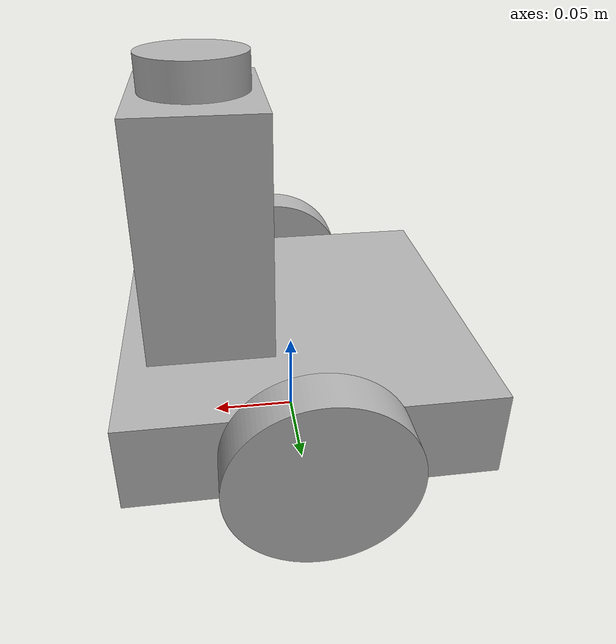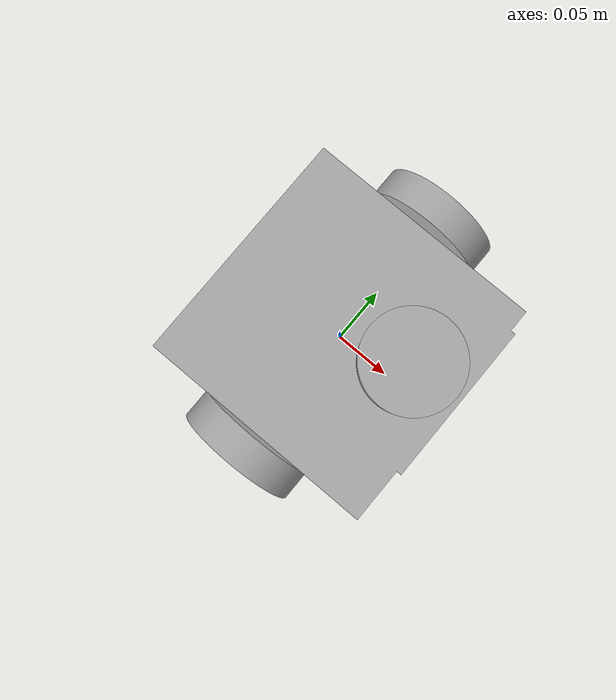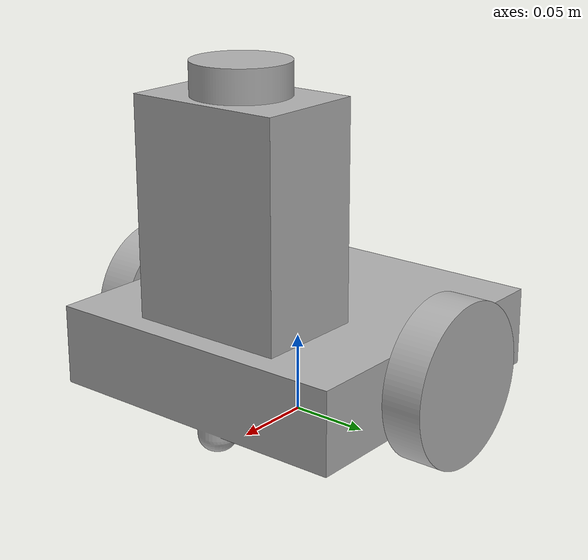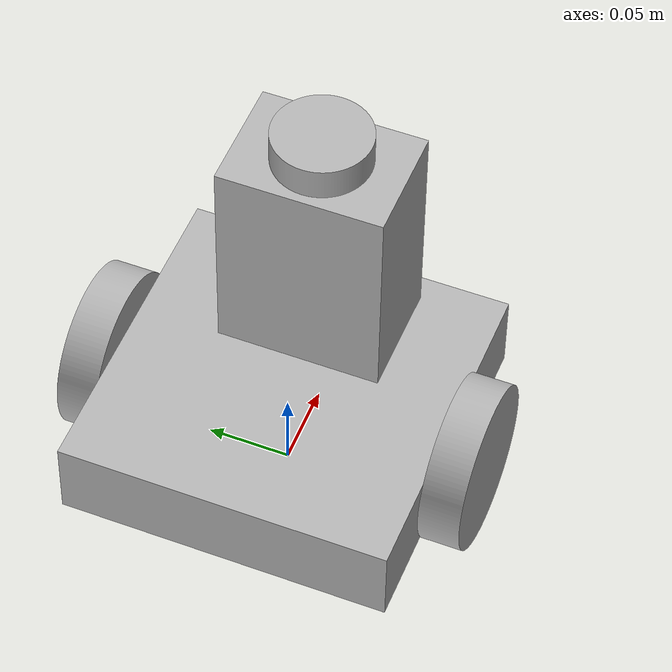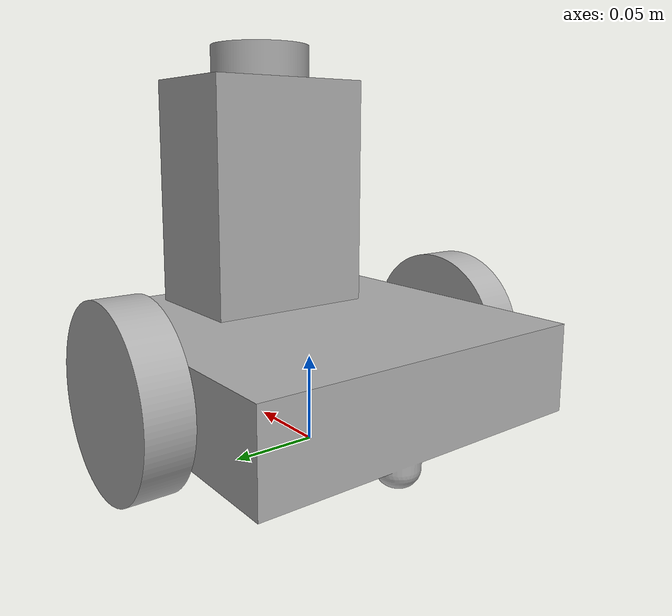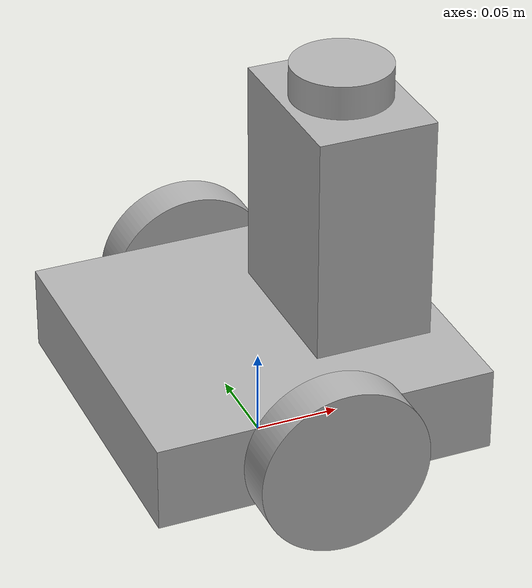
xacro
<?xml version="1.0" ?>
<robot name="rosbot" xmlns:xacro="http://www.ros.org/wiki/xacro">

<xacro:include filename="$(find rosbot_description)/urdf/materials.xacro" />
<xacro:include filename="$(find rosbot_description)/urdf/rosbot.ros2control" />
<xacro:include filename="$(find rosbot_description)/urdf/rosbot.gazebo" />

<link name="base_footprint"/>

<link name="base_link">
  <inertial>
    <origin xyz="0.004279734419382094 0.0 0.05375741183973183" rpy="0 0 0"/>
    <mass value="2.34056579648116"/>
    <inertia ixx="0.008048" iyy="0.008642" izz="0.014848" ixy="-0.0" iyz="0.0" ixz="-0.000438"/>
  </inertial>
  <visual>
    <origin xyz="0 0 0" rpy="0 0 0"/>
    <geometry>
      <mesh filename="file://$(find rosbot_description)/meshes/base_link.stl" scale="0.001 0.001 0.001"/>
    </geometry>
    <material name="silver"/>
  </visual>
  <collision>
    <origin xyz="0 0 0" rpy="0 0 0"/>
    <geometry>
      <mesh filename="file://$(find rosbot_description)/meshes/base_link.stl" scale="0.001 0.001 0.001"/>
    </geometry>
  </collision>
</link>

<link name="right_wheel_1">
  <inertial>
    <origin xyz="-5.790023100122029e-18 -0.012499999999999997 3.7252903539730653e-10" rpy="0 0 0"/>
    <mass value="0.1826050729899067"/>
    <inertia ixx="0.000124" iyy="0.000228" izz="0.000124" ixy="-0.0" iyz="-0.0" ixz="0.0"/>
  </inertial>
  <visual>
    <origin xyz="-0.0 0.1 -0.05" rpy="0 0 0"/>
    <geometry>
      <mesh filename="file://$(find rosbot_description)/meshes/right_wheel_1.stl" scale="0.001 0.001 0.001"/>
    </geometry>
    <material name="silver"/>
  </visual>
  <collision>
    <origin xyz="-0.0 0.1 -0.05" rpy="0 0 0"/>
    <geometry>
      <mesh filename="file://$(find rosbot_description)/meshes/right_wheel_1.stl" scale="0.001 0.001 0.001"/>
    </geometry>
  </collision>
</link>

<link name="left_wheel_1">
  <inertial>
    <origin xyz="1.737006930036608e-17 0.012499999999999997 3.725290284584126e-10" rpy="0 0 0"/>
    <mass value="0.18260507298990675"/>
    <inertia ixx="0.000124" iyy="0.000228" izz="0.000124" ixy="-0.0" iyz="0.0" ixz="0.0"/>
  </inertial>
  <visual>
    <origin xyz="-0.0 -0.1 -0.05" rpy="0 0 0"/>
    <geometry>
      <mesh filename="file://$(find rosbot_description)/meshes/left_wheel_1.stl" scale="0.001 0.001 0.001"/>
    </geometry>
    <material name="silver"/>
  </visual>
  <collision>
    <origin xyz="-0.0 -0.1 -0.05" rpy="0 0 0"/>
    <geometry>
      <mesh filename="file://$(find rosbot_description)/meshes/left_wheel_1.stl" scale="0.001 0.001 0.001"/>
    </geometry>
  </collision>
</link>

<link name="lidar_1">
  <inertial>
    <origin xyz="0.0 0.0 0.010000000000000009" rpy="0 0 0"/>
    <mass value="0.0754575997873079"/>
    <inertia ixx="1.9e-05" iyy="1.9e-05" izz="3.3e-05" ixy="0.0" iyz="0.0" ixz="0.0"/>
  </inertial>
  <visual>
    <origin xyz="-0.05 -0.0 -0.21" rpy="0 0 0"/>
    <geometry>
      <mesh filename="file://$(find rosbot_description)/meshes/lidar_1.stl" scale="0.001 0.001 0.001"/>
    </geometry>
    <material name="silver"/>
  </visual>
  <collision>
    <origin xyz="-0.05 -0.0 -0.21" rpy="0 0 0"/>
    <geometry>
      <mesh filename="file://$(find rosbot_description)/meshes/lidar_1.stl" scale="0.001 0.001 0.001"/>
    </geometry>
  </collision>
</link>

<joint name="base_joint" type="fixed">
  <origin xyz="0.0 0.0 0.0" rpy="0 0 0"/>
  <parent link="base_footprint"/>
  <child link="base_link"/>
</joint>

<joint name="right_wheel_joint" type="continuous">
  <origin xyz="0.0 -0.1 0.05" rpy="0 0 0"/>
  <parent link="base_link"/>
  <child link="right_wheel_1"/>
  <axis xyz="0.0 1.0 0.0"/>
</joint>

<joint name="left_wheel_joint" type="continuous">
  <origin xyz="0.0 0.1 0.05" rpy="0 0 0"/>
  <parent link="base_link"/>
  <child link="left_wheel_1"/>
  <axis xyz="0.0 1.0 0.0"/>
</joint>

<joint name="lidar_joint" type="fixed">
  <origin xyz="0.05 0.0 0.21" rpy="0 0 0"/>
  <parent link="base_link"/>
  <child link="lidar_1"/>
</joint>

</robot>

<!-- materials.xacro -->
<robot name="rosbot" xmlns:xacro="http://www.ros.org/wiki/xacro" >

<material name="silver">
  <color rgba="0.700 0.700 0.700 1.000"/>
</material>

</robot>

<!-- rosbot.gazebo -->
<robot name="rosbot" xmlns:xacro="http://www.ros.org/wiki/xacro" >

<xacro:property name="body_color" value="Gazebo/Silver" />

<gazebo reference="base_link">
  <material>${body_color}</material>
  <mu1>0.2</mu1>
  <mu2>0.2</mu2>
  <self_collide>true</self_collide>
  <gravity>true</gravity>
</gazebo>

<gazebo reference="right_wheel_1">
  <material>${body_color}</material>
  <mu1>0.2</mu1>
  <mu2>0.2</mu2>
  <self_collide>true</self_collide>
</gazebo>

<gazebo reference="left_wheel_1">
  <material>${body_color}</material>
  <mu1>0.2</mu1>
  <mu2>0.2</mu2>
  <self_collide>true</self_collide>
</gazebo>

<gazebo reference="lidar_1">
  <material>${body_color}</material>
  <mu1>0.2</mu1>
  <mu2>0.2</mu2>
  <self_collide>true</self_collide>
</gazebo>

  <gazebo>

        <plugin filename="gz-sim-sensors-system" name="gz::sim::systems::Sensors">
            <render_engine>ogre2</render_engine>
        </plugin>

        <plugin filename="gz-sim-joint-state-publisher-system" name="gz::sim::systems::JointStatePublisher">
        <topic>/joint_states</topic>
        </plugin>

      <plugin
        filename="gz-sim-diff-drive-system"
        name="gz::sim::systems::DiffDrive">
        <left_joint>left_wheel_joint</left_joint>
        <right_joint>right_wheel_joint</right_joint>
        <wheel_separation>0.2</wheel_separation>
        <wheel_radius>0.05</wheel_radius>
        <odom_publish_frequency>30</odom_publish_frequency>
        <topic>/cmd_vel</topic>
        <tf_topic>/tf</tf_topic>
        <frame_id>odom</frame_id>
        <odom_topic>odom</odom_topic>
        <child_frame_id>base_footprint</child_frame_id>

</plugin>
</gazebo>

<gazebo reference="lidar_1">
        <sensor name='gpu_lidar' type='gpu_lidar'>
          <pose>0 0 0 0 0 0</pose>
          <topic>scan</topic>
          <gz_frame_id>lidar_1</gz_frame_id>
          <update_rate>10</update_rate>
          <lidar>
            <scan>
              <horizontal>
                <samples>640</samples>
                <resolution>1</resolution>
                <min_angle>0</min_angle>
                <max_angle>6.280000</max_angle>
              </horizontal>
              <vertical>
                <samples>1</samples>
                <resolution>1</resolution>
                <min_angle>0.0</min_angle>
                <max_angle>0.0</max_angle>
              </vertical>
            </scan>
            <range>
              <min>0.08</min>
              <max>10.0</max>
              <resolution>0.01</resolution>
            </range>
          </lidar>
          <visualize>true</visualize>
        </sensor>
 </gazebo>

</robot>
